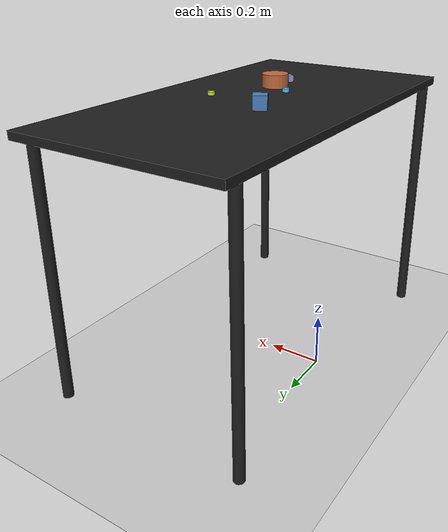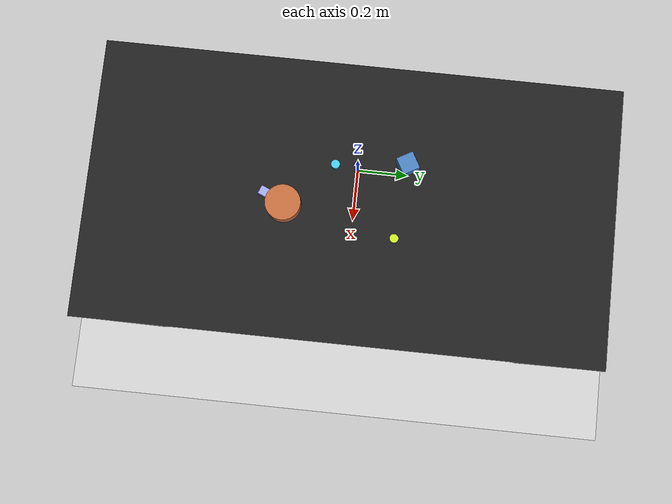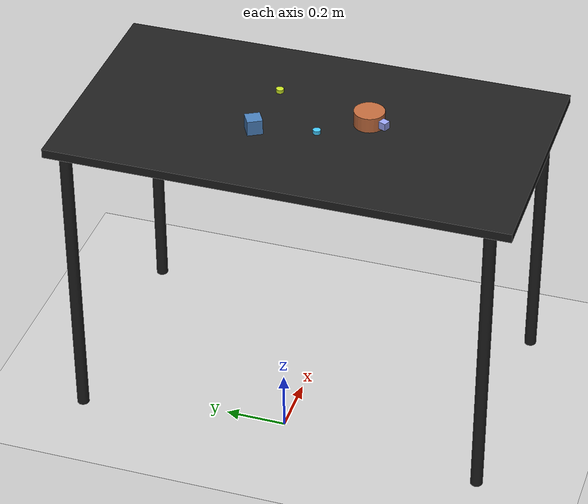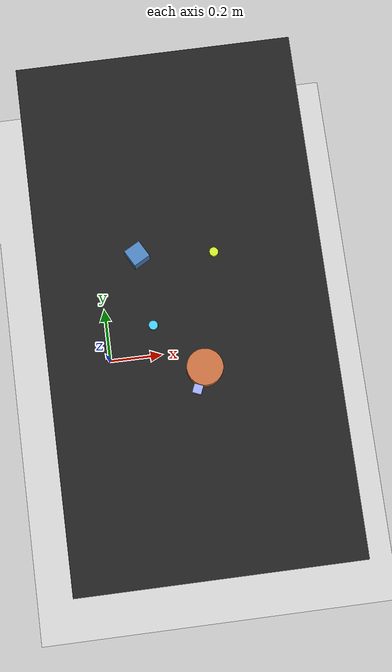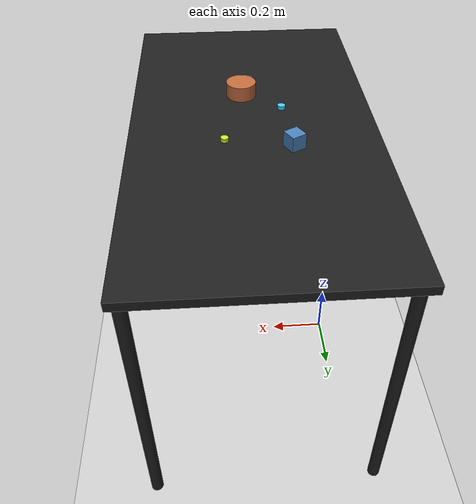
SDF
<?xml version="1.0" ?>
<sdf version="1.6">
  <world name="arm_world">
    <plugin filename="gz-sim-physics-system" name="gz::sim::systems::Physics">
      <engine>
        <filename>libgz-physics-bullet-featherstone-plugin.so</filename>
      </engine>
    </plugin>
    <plugin filename="gz-sim-user-commands-system" name="gz::sim::systems::UserCommands"/>
    <plugin filename="gz-sim-scene-broadcaster-system" name="gz::sim::systems::SceneBroadcaster"/>
    <plugin filename="gz-sim-sensors-system" name="gz::sim::systems::Sensors">
      <render_engine>ogre2</render_engine>
    </plugin>
    <gravity>0.0 0.0 -9.8</gravity>
    <scene>
      <shadows>false</shadows>
    </scene>
    <gui>
      <camera name="user_camera">
        <pose>0.75 -0.75 1.4 0 0.29 2.21</pose>
      </camera>
    </gui>
    <include>
      <uri>https://fuel.gazebosim.org/1.0/OpenRobotics/models/Sun</uri>
    </include>
    <model name="table">
      <static>true</static>
      <include>
        <uri>model://table</uri>
      </include>
      <pose>0.29 0 0 0 0 1.5708</pose>
    </model>
    <model name="ground_plane">
      <static>true</static>
      <link name="link">
        <collision name="collision">
          <geometry>
            <plane>
              <normal>0 0 1</normal>
            </plane>
          </geometry>
          <surface>
            <friction>
              <ode>
                <mu>1.0</mu>
                <mu2>1.0</mu2>
              </ode>
            </friction>
          </surface>
        </collision>
        <visual name="visual">
          <geometry>
            <plane>
              <normal>0 0 1</normal>
              <size>100 100</size>
            </plane>
          </geometry>
          <material>
            <ambient>0.8 0.8 0.8 1</ambient>
            <diffuse>0.8 0.8 0.8 1</diffuse>
            <specular>0.8 0.8 0.8 1</specular>
          </material>
        </visual>
      </link>
    </model>
    <model name="cylinder_l_0">
      <pose>0.319 -0.185 1.05 0 0 3.71</pose>
      <link name="cylinder_l_0_link">
        <collision name="cylinder_l_0_collision">
          <geometry>
            <cylinder>
              <radius>0.05</radius>
              <length>0.05</length>
            </cylinder>
          </geometry>
        </collision>
        <visual name="cylinder_l_0_visual">
          <geometry>
            <cylinder>
              <radius>0.05</radius>
              <length>0.05</length>
            </cylinder>
          </geometry>
          <material>
            <ambient>0.76 0.42 0.24 1</ambient>
            <diffuse>0.76 0.42 0.24 1</diffuse>
          </material>
        </visual>
        <velocity_decay>
          <linear>1</linear>
          <angular>1</angular>
        </velocity_decay>
      </link>
    </model>
    <model name="cube_s_1">
      <pose>0.292 -0.241 1.05 0 0 4.32</pose>
      <link name="cube_s_1_link">
        <collision name="cube_s_1_collision">
          <geometry>
            <box>
              <size>0.025 0.025 0.025</size>
            </box>
          </geometry>
        </collision>
        <visual name="cube_s_1_visual">
          <geometry>
            <box>
              <size>0.025 0.025 0.025</size>
            </box>
          </geometry>
          <material>
            <ambient>0.61 0.65 0.97 1</ambient>
            <diffuse>0.61 0.65 0.97 1</diffuse>
          </material>
        </visual>
        <velocity_decay>
          <linear>1</linear>
          <angular>1</angular>
        </velocity_decay>
      </link>
    </model>
    <model name="cube_m_2">
      <pose>0.174 0.15 1.05 0 0 0.51</pose>
      <link name="cube_m_2_link">
        <collision name="cube_m_2_collision">
          <geometry>
            <box>
              <size>0.05 0.05 0.05</size>
            </box>
          </geometry>
        </collision>
        <visual name="cube_m_2_visual">
          <geometry>
            <box>
              <size>0.05 0.05 0.05</size>
            </box>
          </geometry>
          <material>
            <ambient>0.29 0.5 0.73 1</ambient>
            <diffuse>0.29 0.5 0.73 1</diffuse>
          </material>
        </visual>
        <velocity_decay>
          <linear>1</linear>
          <angular>1</angular>
        </velocity_decay>
      </link>
    </model>
    <model name="cylinder_s_3">
      <pose>0.194 -0.051 1.05 0 0 2.16</pose>
      <link name="cylinder_s_3_link">
        <collision name="cylinder_s_3_collision">
          <geometry>
            <cylinder>
              <radius>0.0125</radius>
              <length>0.0125</length>
            </cylinder>
          </geometry>
        </collision>
        <visual name="cylinder_s_3_visual">
          <geometry>
            <cylinder>
              <radius>0.0125</radius>
              <length>0.0125</length>
            </cylinder>
          </geometry>
          <material>
            <ambient>0.26 0.79 0.99 1</ambient>
            <diffuse>0.26 0.79 0.99 1</diffuse>
          </material>
        </visual>
        <velocity_decay>
          <linear>1</linear>
          <angular>1</angular>
        </velocity_decay>
      </link>
    </model>
    <model name="cylinder_s_4">
      <pose>0.386 0.132 1.05 0 0 4.59</pose>
      <link name="cylinder_s_4_link">
        <collision name="cylinder_s_4_collision">
          <geometry>
            <cylinder>
              <radius>0.0125</radius>
              <length>0.0125</length>
            </cylinder>
          </geometry>
        </collision>
        <visual name="cylinder_s_4_visual">
          <geometry>
            <cylinder>
              <radius>0.0125</radius>
              <length>0.0125</length>
            </cylinder>
          </geometry>
          <material>
            <ambient>0.79 0.9 0.14 1</ambient>
            <diffuse>0.79 0.9 0.14 1</diffuse>
          </material>
        </visual>
        <velocity_decay>
          <linear>1</linear>
          <angular>1</angular>
        </velocity_decay>
      </link>
    </model>
  </world>
</sdf>

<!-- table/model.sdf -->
<sdf version="1.5">
  <model name="table">
    <static>true</static>
    <link name="link">
      <collision name="surface">
        <pose>0 0 1.0 0 0 0</pose>
        <geometry>
          <box>
            <size>1.5 0.8 0.03</size>
          </box>
        </geometry>
        <surface>
          <friction>
            <ode>
              <mu>0.6</mu>
              <mu2>0.6</mu2>
            </ode>
          </friction>
        </surface>
      </collision>
      <visual name="surface">
        <pose>0 0 1.0 0 0 0</pose>
        <geometry>
          <box>
            <size>1.5 0.8 0.03</size>
          </box>
        </geometry>
        <material>
          <script>
            <uri>file://media/materials/scripts/gazebo.material</uri>
            <name>Gazebo/Black</name>
          </script>
        </material>
      </visual>
      <collision name="front_left_leg">
        <pose>0.68 0.38 0.5 0 0 0</pose>
        <geometry>
          <cylinder>
            <radius>0.02</radius>
            <length>1.0</length>
          </cylinder>
        </geometry>
      </collision>
      <visual name="front_left_leg">
        <pose>0.68 0.38 0.5 0 0 0</pose>
        <geometry>
          <cylinder>
            <radius>0.02</radius>
            <length>1.0</length>
          </cylinder>
        </geometry>
        <material>
          <script>
            <uri>file://media/materials/scripts/gazebo.material</uri>
            <name>Gazebo/Black</name>
          </script>
        </material>
      </visual>
      <collision name="front_right_leg">
        <pose>0.68 -0.38 0.5 0 0 0</pose>
        <geometry>
          <cylinder>
            <radius>0.02</radius>
            <length>1.0</length>
          </cylinder>
        </geometry>
      </collision>
      <visual name="front_right_leg">
        <pose>0.68 -0.38 0.5 0 0 0</pose>
        <geometry>
          <cylinder>
            <radius>0.02</radius>
            <length>1.0</length>
          </cylinder>
        </geometry>
        <material>
          <script>
            <uri>file://media/materials/scripts/gazebo.material</uri>
            <name>Gazebo/Black</name>
          </script>
        </material>
      </visual>
      <collision name="back_right_leg">
        <pose>-0.68 -0.38 0.5 0 0 0</pose>
        <geometry>
          <cylinder>
            <radius>0.02</radius>
            <length>1.0</length>
          </cylinder>
        </geometry>
      </collision>
      <visual name="back_right_leg">
        <pose>-0.68 -0.38 0.5 0 0 0</pose>
        <geometry>
          <cylinder>
            <radius>0.02</radius>
            <length>1.0</length>
          </cylinder>
        </geometry>
        <material>
          <script>
            <uri>file://media/materials/scripts/gazebo.material</uri>
            <name>Gazebo/Black</name>
          </script>
        </material>
      </visual>
      <collision name="back_left_leg">
        <pose>-0.68 0.38 0.5 0 0 0</pose>
        <geometry>
          <cylinder>
            <radius>0.02</radius>
            <length>1.0</length>
          </cylinder>
        </geometry>
      </collision>
      <visual name="back_left_leg">
        <pose>-0.68 0.38 0.5 0 0 0</pose>
        <geometry>
          <cylinder>
            <radius>0.02</radius>
            <length>1.0</length>
          </cylinder>
        </geometry>
        <material>
          <script>
            <uri>file://media/materials/scripts/gazebo.material</uri>
            <name>Gazebo/Black</name>
          </script>
        </material>
      </visual>
    </link>
  </model>
</sdf>
